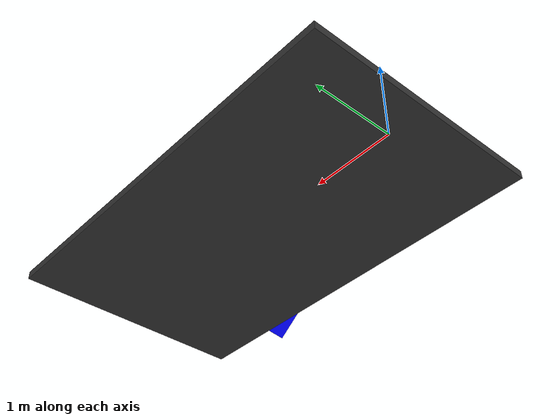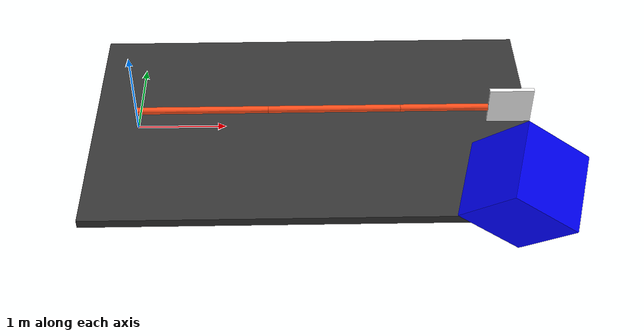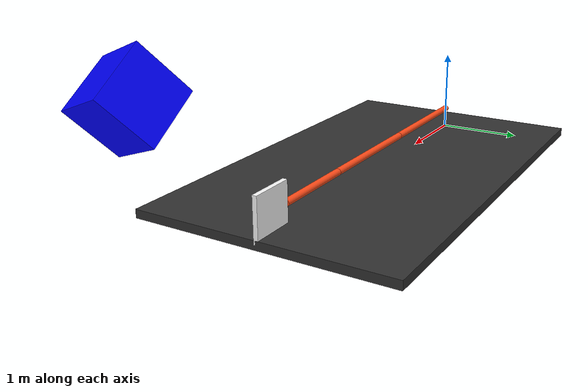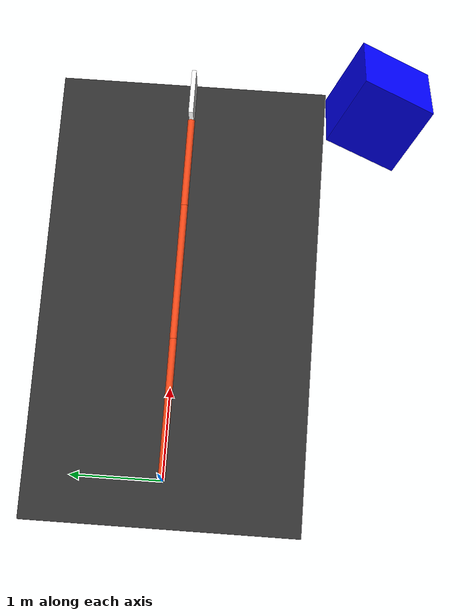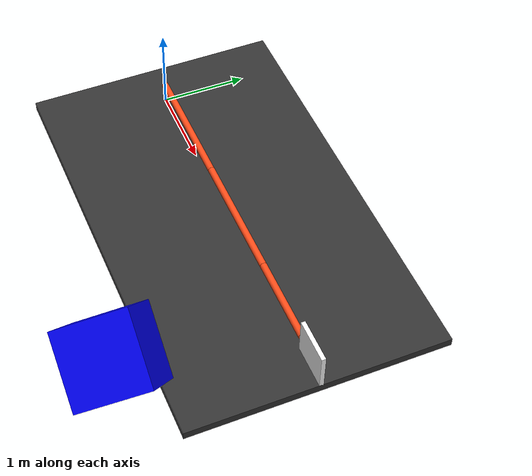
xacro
<?xml version="1.0"?>
<robot xmlns:xacro="http://www.ros.org/wiki/xacro"  name="rapling">

    <!-- Load Simulated or Real Hardware Interfaces -->
    <xacro:arg name="is_sim" default="true"/>

    <!-- Include ros2_control Plugins -->
    <xacro:include filename="$(find rapling_description)/urdf/rapling_ros2_control.xacro" />

    <material name="grey">
        <color rgba="0.2 0.2 0.2 1"/>
    </material>

    <material name="white">
        <color rgba="1 1 1 1"/>
    </material>

    <material name="orange">
        <color rgba="1 0.3 0.1 1"/>
    </material>

    <material name="blue">
        <color rgba="0 0 1 1"/>
    </material>

    <link name="world"></link>

    <joint name="world_to_base" type="fixed">
        <parent link="world" />
        <child link="base" />
        <origin  rpy="1.57 0 0" xyz="0 0 0" />
    </joint>

    <link name="base">
        <visual>
            <origin xyz="2 0 0" rpy="0 0 0"/>
            <geometry>
                <box size="5 0.1 3" />
            </geometry>
            <material name="grey" />
        </visual>
    </link>

    <joint name="base_to_l3" type="revolute">
        <parent link="base" />
        <child link="l3" />
        <origin  rpy="0 0 0" xyz="0 0.25 0" />
        <axis rpy="0 0 0" xyz="0 0 1" />
        <limit effort="0.1" lower="-3.1" upper="3.1" velocity="0.2"/>
    </joint>

    <link name="l3">
        <visual>
            <origin xyz="0.75 0 0" rpy="0 1.57 0"/>
            <geometry>
                <cylinder length="1.5" radius="0.04" />
            </geometry>
            <material name="orange" />
        </visual>
    </link>

    <joint name="l3_to_l2" type="revolute">
        <parent link="l3" />
        <child link="l2" />
        <origin rpy="0 0 0" xyz="1.5 0 0" />
        <axis rpy="0 0 0" xyz="0 0 1" />
        <limit effort="0.1" lower="-3.1" upper="3.1" velocity="0.2"/>
    </joint>

    <link name="l2">
        <visual>
            <origin xyz="0.75 0 0" rpy="0 1.57 0"/>
            <geometry>

                <cylinder length="1.5" radius="0.04" />
            </geometry>
            <material name="orange" />
        </visual>
    </link>

    <joint name="l2_to_l1" type="revolute">
        <parent link="l2" />
        <child link="l1" />
        <origin rpy="0 0 0" xyz="1.5 0 0" />
        <axis rpy="0 0 0" xyz="0 0 1" />
        <limit effort="0.1" lower="-3.1" upper="3.1" velocity="0.2"/>
    </joint>

    <link name="l1">
        <visual>
            <origin xyz="0.5 0 0" rpy="0 1.57 0"/>
            <geometry>

                <cylinder length="1" radius="0.04" />
            </geometry>
            <material name="orange" />
        </visual>
    </link>

    <joint name="l1_to_grip" type="revolute">
        <parent link="l1" />
        <child link="grip" />
        <origin rpy="0 0 0" xyz="1 0 0" />
        <axis rpy="0 0 0" xyz="0 0 1" />
        <limit effort="0.1" lower="-3.1" upper="3.1" velocity="0.2"/>
    </joint>

    <link name="grip">
        <visual>
            <origin xyz="0.25 0 0"/>
            <geometry>
                <box size="0.5 0.5 0.05" />
            </geometry>
            <material name="white" />
        </visual>
    </link>

    <joint name="world_to_camera" type="fixed">
        <parent link="base" />
        <child link="camera" />
        <origin  rpy="-2 0 2.5" xyz="4 1 2" />
    </joint>

    <link name="camera">
        <visual>
            <origin xyz="0 0 0"/>
            <geometry>
                <box size="0.8 0.8 0.8" />
            </geometry>
            <material name="blue" />
        </visual>
    </link>

</robot>
